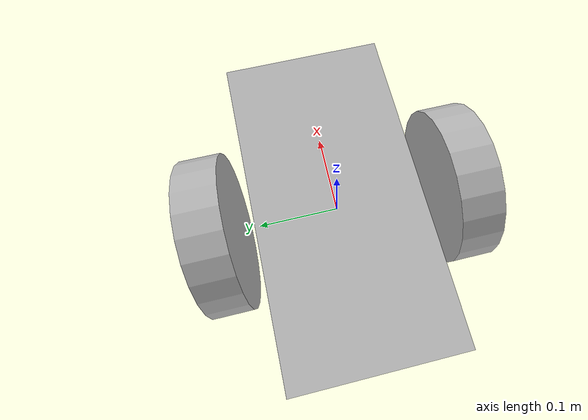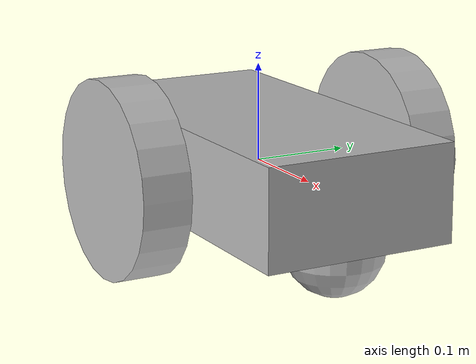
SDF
<?xml version='1.0'?>
<sdf version='1.6'>
  <model name='my_robot'>
    <link name='robot_footprint'>
      <pose frame=''>0 0 0 0 -0 0</pose>
      <inertial>
        <pose frame=''>0 0 0 0 -0 0</pose>
        <mass>15</mass>
        <inertia>
          <ixx>0.1</ixx>
          <ixy>0</ixy>
          <ixz>0</ixz>
          <iyy>0.1</iyy>
          <iyz>0</iyz>
          <izz>0.1</izz>
        </inertia>
      </inertial>
      <self_collide>0</self_collide>
      <kinematic>0</kinematic>
      <gravity>1</gravity>
      <visual name='robot_footprint_fixed_joint_lump__chassis_visual_visual'>
        <pose frame=''>0 0 0 0 -0 0</pose>
        <geometry>
          <box>
            <size>0.4 0.2 0.1</size>
          </box>
        </geometry>
        <cast_shadows>1</cast_shadows>
        <transparency>0</transparency>
        <material>
          <shader type='vertex'>
            <normal_map>__default__</normal_map>
          </shader>
        </material>
      </visual>
      <visual name='robot_footprint_fixed_joint_lump__back_caster_visual_visual_1'>
        <pose frame=''>-0.15 0 -0.05 0 -0 0</pose>
        <geometry>
          <sphere>
            <radius>0.05</radius>
          </sphere>
        </geometry>
        <cast_shadows>1</cast_shadows>
        <transparency>0</transparency>
        <material>
          <shader type='vertex'>
            <normal_map>__default__</normal_map>
          </shader>
        </material>
      </visual>
      <visual name='robot_footprint_fixed_joint_lump__front_caster_visual_visual_2'>
        <pose frame=''>0.15 0 -0.05 0 -0 0</pose>
        <geometry>
          <sphere>
            <radius>0.05</radius>
          </sphere>
        </geometry>
        <cast_shadows>1</cast_shadows>
        <transparency>0</transparency>
        <material>
          <shader type='vertex'>
            <normal_map>__default__</normal_map>
          </shader>
        </material>
      </visual>
      <collision name='robot_footprint_fixed_joint_lump__front_caster_collision_collision_2'>
        <laser_retro>0</laser_retro>
        <max_contacts>10</max_contacts>
        <pose frame=''>0.15 0 -0.05 0 -0 0</pose>
        <geometry>
          <sphere>
            <radius>0.0499</radius>
          </sphere>
        </geometry>
        <surface>
          <friction>
            <ode>
              <mu>1</mu>
              <mu2>1</mu2>
              <fdir1>0 0 0</fdir1>
              <slip1>0</slip1>
              <slip2>0</slip2>
            </ode>
            <torsional>
              <coefficient>1</coefficient>
              <patch_radius>0</patch_radius>
              <surface_radius>0</surface_radius>
              <use_patch_radius>1</use_patch_radius>
              <ode>
                <slip>0</slip>
              </ode>
            </torsional>
          </friction>
          <bounce>
            <restitution_coefficient>0</restitution_coefficient>
            <threshold>1e+06</threshold>
          </bounce>
          <contact>
            <collide_without_contact>0</collide_without_contact>
            <collide_without_contact_bitmask>1</collide_without_contact_bitmask>
            <collide_bitmask>1</collide_bitmask>
            <ode>
              <soft_cfm>0</soft_cfm>
              <soft_erp>0.2</soft_erp>
              <kp>1e+13</kp>
              <kd>1</kd>
              <max_vel>0.01</max_vel>
              <min_depth>0</min_depth>
            </ode>
            <bullet>
              <split_impulse>1</split_impulse>
              <split_impulse_penetration_threshold>-0.01</split_impulse_penetration_threshold>
              <soft_cfm>0</soft_cfm>
              <soft_erp>0.2</soft_erp>
              <kp>1e+13</kp>
              <kd>1</kd>
            </bullet>
          </contact>
        </surface>
      </collision>
      <collision name='robot_footprint_fixed_joint_lump__collision_collision'>
        <laser_retro>0</laser_retro>
        <max_contacts>10</max_contacts>
        <pose frame=''>0 0 0 0 -0 0</pose>
        <geometry>
          <box>
            <size>0.4 0.2 0.1</size>
          </box>
        </geometry>
        <surface>
          <friction>
            <ode>
              <mu>1</mu>
              <mu2>1</mu2>
              <fdir1>0 0 0</fdir1>
              <slip1>0</slip1>
              <slip2>0</slip2>
            </ode>
            <torsional>
              <coefficient>1</coefficient>
              <patch_radius>0</patch_radius>
              <surface_radius>0</surface_radius>
              <use_patch_radius>1</use_patch_radius>
              <ode>
                <slip>0</slip>
              </ode>
            </torsional>
          </friction>
          <bounce>
            <restitution_coefficient>0</restitution_coefficient>
            <threshold>1e+06</threshold>
          </bounce>
          <contact>
            <collide_without_contact>0</collide_without_contact>
            <collide_without_contact_bitmask>1</collide_without_contact_bitmask>
            <collide_bitmask>1</collide_bitmask>
            <ode>
              <soft_cfm>0</soft_cfm>
              <soft_erp>0.2</soft_erp>
              <kp>1e+13</kp>
              <kd>1</kd>
              <max_vel>0.01</max_vel>
              <min_depth>0</min_depth>
            </ode>
            <bullet>
              <split_impulse>1</split_impulse>
              <split_impulse_penetration_threshold>-0.01</split_impulse_penetration_threshold>
              <soft_cfm>0</soft_cfm>
              <soft_erp>0.2</soft_erp>
              <kp>1e+13</kp>
              <kd>1</kd>
            </bullet>
          </contact>
        </surface>
      </collision>
      <collision name='robot_footprint_fixed_joint_lump__back_caster_collision_collision_1'>
        <laser_retro>0</laser_retro>
        <max_contacts>10</max_contacts>
        <pose frame=''>-0.15 0 -0.05 0 -0 0</pose>
        <geometry>
          <sphere>
            <radius>0.0499</radius>
          </sphere>
        </geometry>
        <surface>
          <friction>
            <ode>
              <mu>1</mu>
              <mu2>1</mu2>
              <fdir1>0 0 0</fdir1>
              <slip1>0</slip1>
              <slip2>0</slip2>
            </ode>
            <torsional>
              <coefficient>1</coefficient>
              <patch_radius>0</patch_radius>
              <surface_radius>0</surface_radius>
              <use_patch_radius>1</use_patch_radius>
              <ode>
                <slip>0</slip>
              </ode>
            </torsional>
          </friction>
          <bounce>
            <restitution_coefficient>0</restitution_coefficient>
            <threshold>1e+06</threshold>
          </bounce>
          <contact>
            <collide_without_contact>0</collide_without_contact>
            <collide_without_contact_bitmask>1</collide_without_contact_bitmask>
            <collide_bitmask>1</collide_bitmask>
            <ode>
              <soft_cfm>0</soft_cfm>
              <soft_erp>0.2</soft_erp>
              <kp>1e+13</kp>
              <kd>1</kd>
              <max_vel>0.01</max_vel>
              <min_depth>0</min_depth>
            </ode>
            <bullet>
              <split_impulse>1</split_impulse>
              <split_impulse_penetration_threshold>-0.01</split_impulse_penetration_threshold>
              <soft_cfm>0</soft_cfm>
              <soft_erp>0.2</soft_erp>
              <kp>1e+13</kp>
              <kd>1</kd>
            </bullet>
          </contact>
        </surface>
      </collision>
    </link>
    <link name='left_wheel'>
      <pose frame=''>0 0.15 0 1.57002 -1.57 2.5e-05</pose>
      <inertial>
        <pose frame=''>0 0 0 0 -0 0</pose>
        <mass>5</mass>
        <inertia>
          <ixx>0.1</ixx>
          <ixy>0</ixy>
          <ixz>0</ixz>
          <iyy>0.1</iyy>
          <iyz>0</iyz>
          <izz>0.1</izz>
        </inertia>
      </inertial>
      <self_collide>0</self_collide>
      <kinematic>0</kinematic>
      <gravity>1</gravity>
      <visual name='left_wheel_fixed_joint_lump__visual_visual'>
        <pose frame=''>0 0 0 0 -0 0</pose>
        <geometry>
          <cylinder>
            <length>0.05</length>
            <radius>0.1</radius>
          </cylinder>
        </geometry>
        <cast_shadows>1</cast_shadows>
        <transparency>0</transparency>
        <material>
          <shader type='vertex'>
            <normal_map>__default__</normal_map>
          </shader>
        </material>
      </visual>
      <collision name='left_wheel_fixed_joint_lump__collision_collision'>
        <laser_retro>0</laser_retro>
        <max_contacts>10</max_contacts>
        <pose frame=''>0 0 0 0 -0 0</pose>
        <geometry>
          <cylinder>
            <radius>0.1</radius>
            <length>0.05</length>
          </cylinder>
        </geometry>
        <surface>
          <friction>
            <ode>
              <mu>1</mu>
              <mu2>1</mu2>
              <fdir1>0 0 0</fdir1>
              <slip1>0</slip1>
              <slip2>0</slip2>
            </ode>
            <torsional>
              <coefficient>1</coefficient>
              <patch_radius>0</patch_radius>
              <surface_radius>0</surface_radius>
              <use_patch_radius>1</use_patch_radius>
              <ode>
                <slip>0</slip>
              </ode>
            </torsional>
          </friction>
          <bounce>
            <restitution_coefficient>0</restitution_coefficient>
            <threshold>1e+06</threshold>
          </bounce>
          <contact>
            <collide_without_contact>0</collide_without_contact>
            <collide_without_contact_bitmask>1</collide_without_contact_bitmask>
            <collide_bitmask>1</collide_bitmask>
            <ode>
              <soft_cfm>0</soft_cfm>
              <soft_erp>0.2</soft_erp>
              <kp>1e+13</kp>
              <kd>1</kd>
              <max_vel>0.01</max_vel>
              <min_depth>0</min_depth>
            </ode>
            <bullet>
              <split_impulse>1</split_impulse>
              <split_impulse_penetration_threshold>-0.01</split_impulse_penetration_threshold>
              <soft_cfm>0</soft_cfm>
              <soft_erp>0.2</soft_erp>
              <kp>1e+13</kp>
              <kd>1</kd>
            </bullet>
          </contact>
        </surface>
      </collision>
    </link>
    <link name='right_wheel'>
      <pose frame=''>0 -0.15 -0 1.57005 -1.57 -4.7e-05</pose>
      <inertial>
        <pose frame=''>0 0 0 0 -0 0</pose>
        <mass>5</mass>
        <inertia>
          <ixx>0.1</ixx>
          <ixy>0</ixy>
          <ixz>0</ixz>
          <iyy>0.1</iyy>
          <iyz>0</iyz>
          <izz>0.1</izz>
        </inertia>
      </inertial>
      <self_collide>0</self_collide>
      <kinematic>0</kinematic>
      <gravity>1</gravity>
      <visual name='right_wheel_fixed_joint_lump__visual_visual'>
        <pose frame=''>0 0 0 0 -0 0</pose>
        <geometry>
          <cylinder>
            <length>0.05</length>
            <radius>0.1</radius>
          </cylinder>
        </geometry>
        <cast_shadows>1</cast_shadows>
        <transparency>0</transparency>
        <material>
          <shader type='vertex'>
            <normal_map>__default__</normal_map>
          </shader>
        </material>
      </visual>
      <collision name='right_wheel_fixed_joint_lump__collision_collision'>
        <laser_retro>0</laser_retro>
        <max_contacts>10</max_contacts>
        <pose frame=''>0 0 0 0 -0 0</pose>
        <geometry>
          <cylinder>
            <radius>0.1</radius>
            <length>0.05</length>
          </cylinder>
        </geometry>
        <surface>
          <friction>
            <ode>
              <mu>1</mu>
              <mu2>1</mu2>
              <fdir1>0 0 0</fdir1>
              <slip1>0</slip1>
              <slip2>0</slip2>
            </ode>
            <torsional>
              <coefficient>1</coefficient>
              <patch_radius>0</patch_radius>
              <surface_radius>0</surface_radius>
              <use_patch_radius>1</use_patch_radius>
              <ode>
                <slip>0</slip>
              </ode>
            </torsional>
          </friction>
          <bounce>
            <restitution_coefficient>0</restitution_coefficient>
            <threshold>1e+06</threshold>
          </bounce>
          <contact>
            <collide_without_contact>0</collide_without_contact>
            <collide_without_contact_bitmask>1</collide_without_contact_bitmask>
            <collide_bitmask>1</collide_bitmask>
            <ode>
              <soft_cfm>0</soft_cfm>
              <soft_erp>0.2</soft_erp>
              <kp>1e+13</kp>
              <kd>1</kd>
              <max_vel>0.01</max_vel>
              <min_depth>0</min_depth>
            </ode>
            <bullet>
              <split_impulse>1</split_impulse>
              <split_impulse_penetration_threshold>-0.01</split_impulse_penetration_threshold>
              <soft_cfm>0</soft_cfm>
              <soft_erp>0.2</soft_erp>
              <kp>1e+13</kp>
              <kd>1</kd>
            </bullet>
          </contact>
        </surface>
      </collision>
    </link>
    <joint name='left_wheel_hinge' type='revolute'>
      <parent>robot_footprint</parent>
      <child>left_wheel</child>
      <pose frame=''>0 0 0 0 -0 0</pose>
      <axis>
        <xyz>0 1 0</xyz>
        <use_parent_model_frame>1</use_parent_model_frame>
        <limit>
          <lower>-1e+16</lower>
          <upper>1e+16</upper>
          <effort>-1</effort>
          <velocity>-1</velocity>
        </limit>
        <dynamics>
          <spring_reference>0</spring_reference>
          <spring_stiffness>0</spring_stiffness>
          <damping>1</damping>
          <friction>1</friction>
        </dynamics>
      </axis>
      <physics>
        <ode>
          <limit>
            <cfm>0</cfm>
            <erp>0.2</erp>
          </limit>
          <suspension>
            <cfm>0</cfm>
            <erp>0.2</erp>
          </suspension>
        </ode>
      </physics>
    </joint>
    <joint name='right_wheel_hinge' type='revolute'>
      <parent>robot_footprint</parent>
      <child>right_wheel</child>
      <pose frame=''>0 0 0 0 -0 0</pose>
      <axis>
        <xyz>0 1 0</xyz>
        <use_parent_model_frame>1</use_parent_model_frame>
        <limit>
          <lower>-1e+16</lower>
          <upper>1e+16</upper>
          <effort>-1</effort>
          <velocity>-1</velocity>
        </limit>
        <dynamics>
          <spring_reference>0</spring_reference>
          <spring_stiffness>0</spring_stiffness>
          <damping>1</damping>
          <friction>1</friction>
        </dynamics>
      </axis>
      <physics>
        <ode>
          <limit>
            <cfm>0</cfm>
            <erp>0.2</erp>
          </limit>
          <suspension>
            <cfm>0</cfm>
            <erp>0.2</erp>
          </suspension>
        </ode>
      </physics>
    </joint>
    <static>0</static>
    <allow_auto_disable>1</allow_auto_disable>
  </model>
</sdf>
